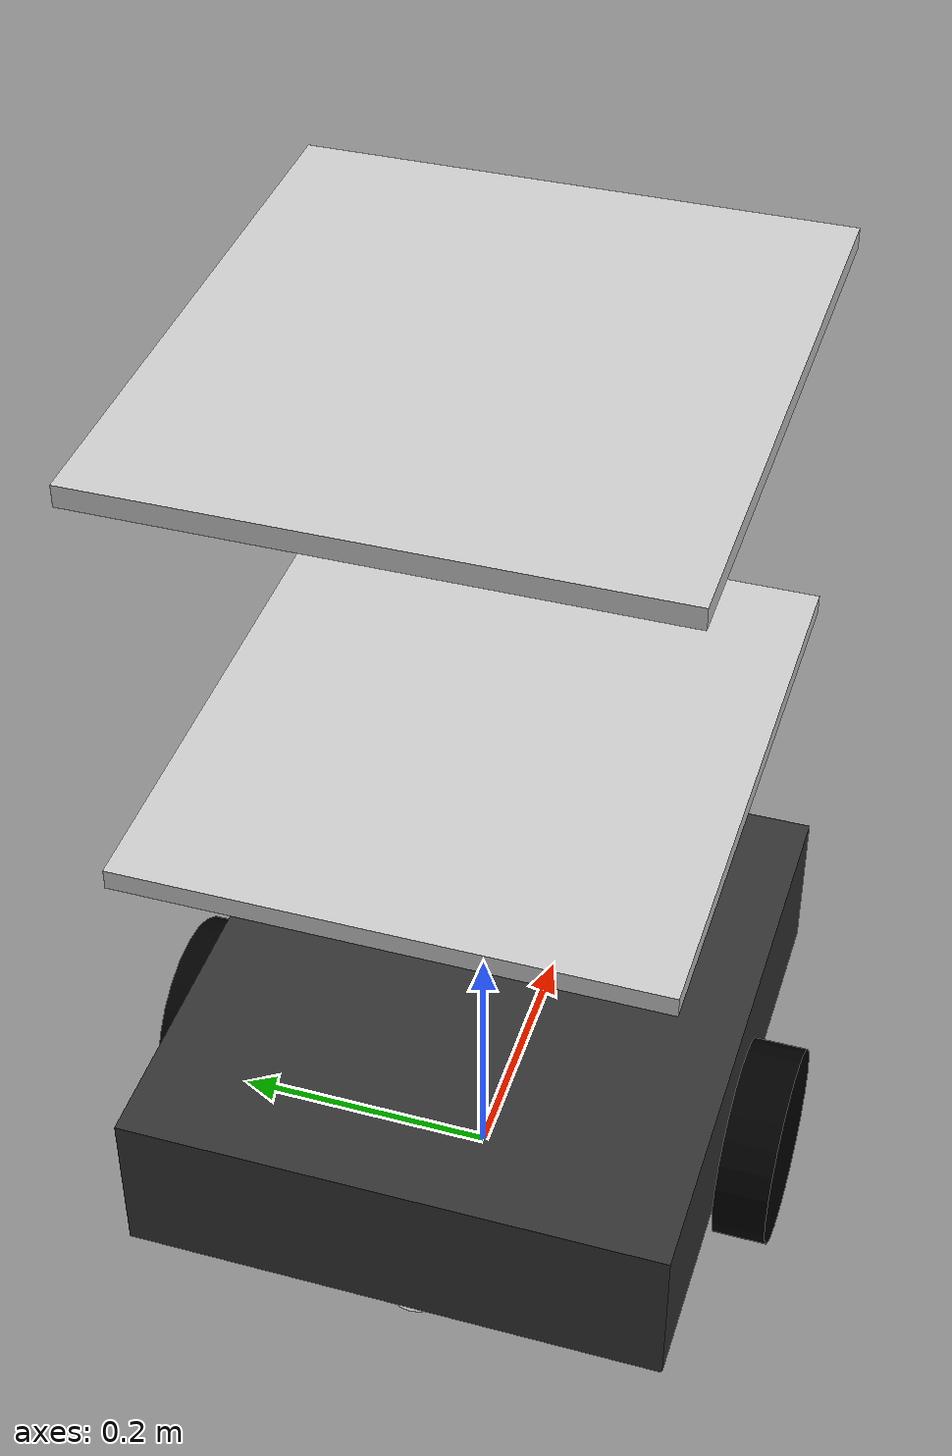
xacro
<?xml version="1.0"?>
<robot xmlns:xacro="http://www.ros.org/wiki/xacro" name="food_service_robot">

    <!-- ==================== PROPERTIES (BIẾN CẤU HÌNH) ==================== -->
    <xacro:property name="base_length" value="0.45"/>
    <xacro:property name="base_width" value="0.40"/>
    <xacro:property name="base_height" value="0.12"/>
    <xacro:property name="base_mass" value="10.0"/>

    <xacro:property name="wheel_radius" value="0.075"/>
    <xacro:property name="wheel_length" value="0.04"/>
    <xacro:property name="wheel_mass" value="0.8"/>
    <xacro:property name="wheel_offset_y" value="0.22"/> <!-- Khoảng cách từ tâm ra 2 bánh -->

    <xacro:property name="caster_radius" value="0.03"/>
    <xacro:property name="caster_mass" value="0.2"/>
    <xacro:property name="caster_offset_x" value="0.16"/>

    <xacro:property name="tray_length" value="0.42"/>
    <xacro:property name="tray_width" value="0.38"/>
    <xacro:property name="tray_height" value="0.015"/>

    <!-- ==================== MACROS TÍNH QUÁN TÍNH ==================== -->
    <xacro:macro name="inertial_box" params="mass x y z *origin">
        <inertial>
            <xacro:insert_block name="origin"/>
            <mass value="${mass}"/>
            <inertia ixx="${(1/12) * mass * (y*y + z*z)}" ixy="0.0" ixz="0.0"
                     iyy="${(1/12) * mass * (x*x + z*z)}" iyz="0.0"
                     izz="${(1/12) * mass * (x*x + y*y)}"/>
        </inertial>
    </xacro:macro>

    <xacro:macro name="inertial_cylinder" params="mass radius length *origin">
        <inertial>
            <xacro:insert_block name="origin"/>
            <mass value="${mass}"/>
            <inertia ixx="${(1/12) * mass * (3*radius*radius + length*length)}" ixy="0.0" ixz="0.0"
                     iyy="${(1/12) * mass * (3*radius*radius + length*length)}" iyz="0.0"
                     izz="${(1/2) * mass * (radius*radius)}"/>
        </inertial>
    </xacro:macro>

    <!-- ==================== BASE FOOTPRINT & BASE LINK ==================== -->
    <link name="base_footprint"/>

    <joint name="base_joint" type="fixed">
        <parent link="base_footprint"/>
        <child link="base_link"/>
        <origin xyz="0 0 ${wheel_radius}" rpy="0 0 0"/>
    </joint>

    <link name="base_link">
        <visual>
            <origin xyz="0 0 ${base_height/2}" rpy="0 0 0"/>
            <geometry>
                <box size="${base_length} ${base_width} ${base_height}"/>
            </geometry>
            <material name="chassis_color">
                <color rgba="0.2 0.2 0.2 1.0"/>
            </material>
        </visual>
        <collision>
            <origin xyz="0 0 ${base_height/2}" rpy="0 0 0"/>
            <geometry>
                <box size="${base_length} ${base_width} ${base_height}"/>
            </geometry>
        </collision>
        <xacro:inertial_box mass="${base_mass}" x="${base_length}" y="${base_width}" z="${base_height}">
            <origin xyz="0 0 ${base_height/2}" rpy="0 0 0"/>
        </xacro:inertial_box>
    </link>

    <!-- ==================== MACRO TẠO BÁNH XE CHỦ ĐỘNG ==================== -->
    <xacro:macro name="wheel" params="prefix y_reflect">
        <joint name="${prefix}_wheel_joint" type="continuous">
            <parent link="base_link"/>
            <child link="${prefix}_wheel"/>
            <origin xyz="0 ${y_reflect * wheel_offset_y} 0" rpy="-1.5708 0 0"/>
            <axis xyz="0 0 1"/>
        </joint>

        <link name="${prefix}_wheel">
            <visual>
                <geometry>
                    <cylinder radius="${wheel_radius}" length="${wheel_length}"/>
                </geometry>
                <material name="black">
                    <color rgba="0.0 0.0 0.0 1.0"/>
                </material>
            </visual>
            <collision>
                <geometry>
                    <cylinder radius="${wheel_radius}" length="${wheel_length}"/>
                </geometry>
            </collision>
            <xacro:inertial_cylinder mass="${wheel_mass}" radius="${wheel_radius}" length="${wheel_length}">
                <origin xyz="0 0 0" rpy="0 0 0"/>
            </xacro:inertial_cylinder>
        </link>
    </xacro:macro>

    <!-- Khai báo Bánh Trái và Bánh Phải -->
    <xacro:wheel prefix="left" y_reflect="1"/>
    <xacro:wheel prefix="right" y_reflect="-1"/>

    <!-- ==================== BÁNH CASTER (XOAY TỰ DO) ==================== -->
    <xacro:macro name="caster" params="prefix x_reflect">
        <joint name="${prefix}_caster_joint" type="fixed">
            <parent link="base_link"/>
            <child link="${prefix}_caster"/>
            <origin xyz="${x_reflect * caster_offset_x} 0 ${caster_radius - wheel_radius}" rpy="0 0 0"/>
        </joint>

        <link name="${prefix}_caster">
            <visual>
                <geometry>
                    <sphere radius="${caster_radius}"/>
                </geometry>
                <material name="white">
                    <color rgba="1.0 1.0 1.0 1.0"/>
                </material>
            </visual>
            <collision>
                <geometry>
                    <sphere radius="${caster_radius}"/>
                </geometry>
            </collision>
            <inertial>
                <mass value="${caster_mass}"/>
                <inertia ixx="0.0001" ixy="0" ixz="0" iyy="0.0001" iyz="0" izz="0.0001"/>
            </inertial>
        </link>
    </xacro:macro>

    <xacro:caster prefix="front" x_reflect="1"/>
    <xacro:caster prefix="rear" x_reflect="-1"/>

    <!-- ==================== KHAY THỨC ĂN (2 TẦNG) ==================== -->
    <xacro:macro name="tray" params="prefix z_offset">
        <joint name="${prefix}_tray_joint" type="fixed">
            <parent link="base_link"/>
            <child link="${prefix}_tray"/>
            <origin xyz="0 0 ${z_offset}" rpy="0 0 0"/>
        </joint>

        <link name="${prefix}_tray">
            <visual>
                <geometry>
                    <box size="${tray_length} ${tray_width} ${tray_height}"/>
                </geometry>
                <material name="tray_mat">
                    <color rgba="0.8 0.8 0.8 0.9"/>
                </material>
            </visual>
            <collision>
                <geometry>
                    <box size="${tray_length} ${tray_width} ${tray_height}"/>
                </geometry>
            </collision>
        </link>
    </xacro:macro>

    <xacro:tray prefix="tray_level_1" z_offset="0.35"/>
    <xacro:tray prefix="tray_level_2" z_offset="0.65"/>

    <!-- ==================== 2D LIDAR SENSOR ==================== -->
    <joint name="laser_joint" type="fixed">
        <parent link="base_link"/>
        <child link="laser_frame"/>
        <origin xyz="${base_length/2 - 0.04} 0 ${base_height + 0.03}" rpy="0 0 0"/>
    </joint>

    <link name="laser_frame">
         <inertial>
            <origin xyz="0 0 0" rpy="0 0 0"/>
            <mass value="0.1"/> <!-- Khối lượng 100g -->
            <inertia ixx="0.0001" ixy="0.0" ixz="0.0" iyy="0.0001" iyz="0.0" izz="0.0001"/>
        </inertial>
        <visual>
            <geometry>
                <cylinder radius="0.035" length="0.04"/>
            </geometry>
            <material name="red">
                <color rgba="0.9 0.1 0.1 1.0"/>
            </material>
        </visual>
        <collision>
            <geometry>
                <cylinder radius="0.035" length="0.04"/>
            </geometry>
        </collision>
    </link>
<!-- ==================== GAZEBO PLUGINS & MATERIALS ==================== -->
    <!-- Gán ma sát cho bánh xe -->
    <gazebo reference="left_wheel">
        <mu1>1.0</mu1>
        <mu2>1.0</mu2>
        <material>Gazebo/Black</material>
    </gazebo>

    <gazebo reference="right_wheel">
        <mu1>1.0</mu1>
        <mu2>1.0</mu2>
        <material>Gazebo/Black</material>
    </gazebo>

    <!-- Giảm ma sát cho bánh Caster để robot dễ xoay -->
    <gazebo reference="front_caster">
        <mu1>0.001</mu1>
        <mu2>0.001</mu2>
        <material>Gazebo/White</material>
    </gazebo>

    <gazebo reference="rear_caster">
        <mu1>0.001</mu1>
        <mu2>0.001</mu2>
        <material>Gazebo/White</material>
    </gazebo>

    <!-- Plugin Điều khiển Truyền động 2 bánh (Differential Drive) -->
    <gazebo>
        <plugin name="diff_drive" filename="libgazebo_ros_diff_drive.so">
            <!-- Thông tin bánh xe & khoảng cách lấy từ XACRO -->
            <left_joint>left_wheel_joint</left_joint>
            <right_joint>right_wheel_joint</right_joint>
            <wheel_separation>0.44</wheel_separation>
            <wheel_diameter>0.15</wheel_diameter>

            <!-- Giới hạn công suất động cơ -->
            <max_wheel_torque>20</max_wheel_torque>
            <max_wheel_acceleration>1.0</max_wheel_acceleration>

            <!-- Cấu hình Topic Output -->
            <command_topic>cmd_vel</command_topic>
            <odometry_topic>odom</odometry_topic>
            <odometry_frame>odom</odometry_frame>
            <robot_base_frame>base_footprint</robot_base_frame>

            <publish_odom>true</publish_odom>
            <publish_odom_tf>true</publish_odom_tf>
            <publish_wheel_tf>true</publish_wheel_tf>
        </plugin>
    </gazebo>
    <!-- ==================== GAZEBO LIDAR PLUGIN ==================== -->
    <gazebo reference="laser_frame">
        <sensor name="lidar_sensor" type="ray">
            <always_on>true</always_on>
            <visualize>true</visualize> <!-- Hiện tia laser màu xanh trong Gazebo -->
            <update_rate>10</update_rate>
            <ray>
                <scan>
                    <horizontal>
                        <samples>360</samples>
                        <resolution>1</resolution>
                        <min_angle>-3.14159</min_angle>
                        <max_angle>3.14159</max_angle>
                    </horizontal>
                </scan>
                <range>
                    <min>0.12</min>
                    <max>12.0</max>
                    <resolution>0.01</resolution>
                </range>
            </ray>
            <plugin name="gazebo_ros_laser_controller" filename="libgazebo_ros_ray_sensor.so">
                <ros>
                    <remapping>~/out:=scan</remapping>
                </ros>
                <output_type>sensor_msgs/LaserScan</output_type>
                <frame_name>laser_frame</frame_name>
            </plugin>
        </sensor>
    </gazebo>
</robot>
